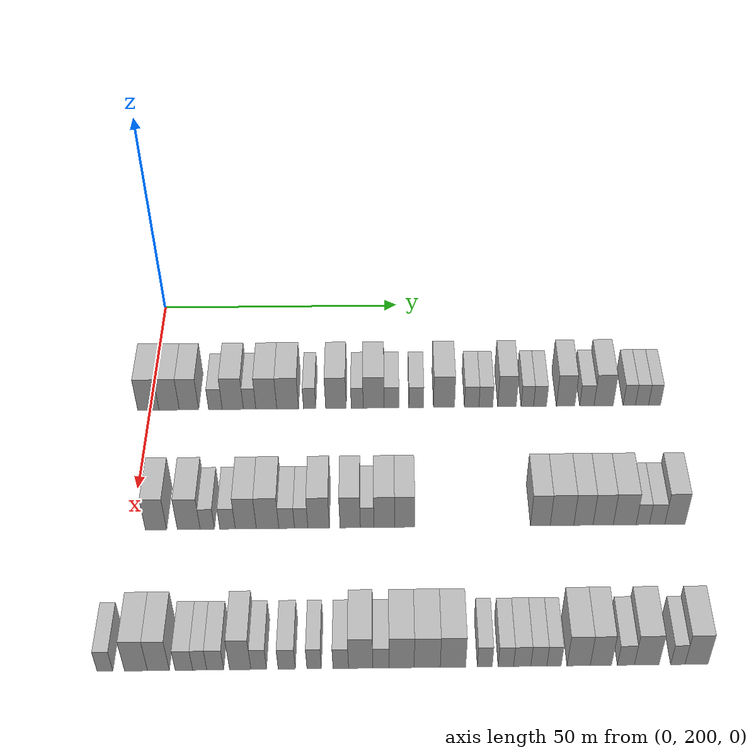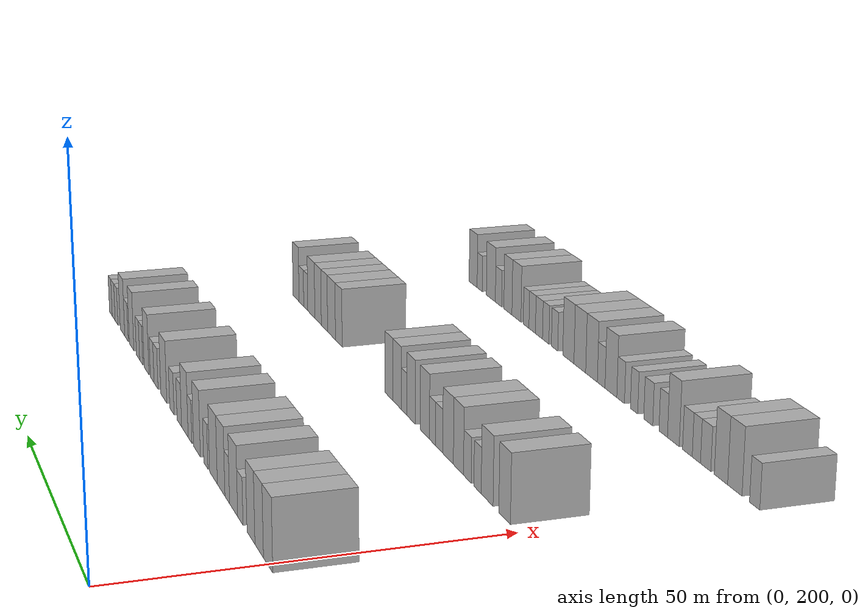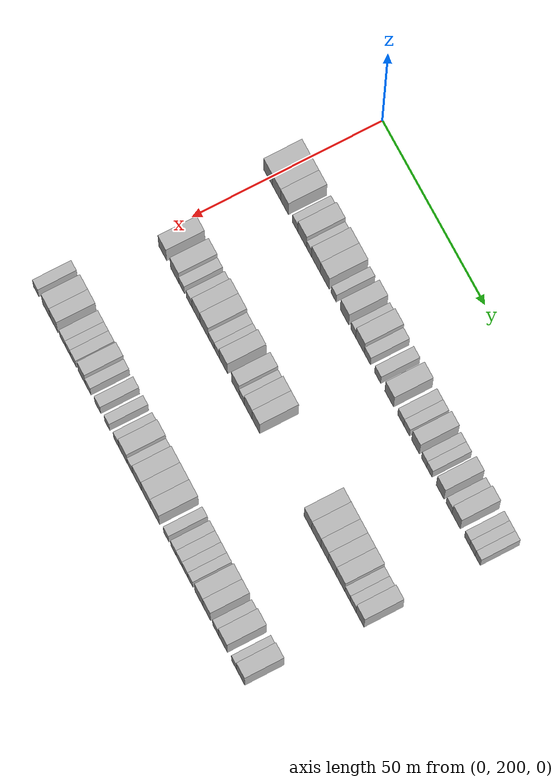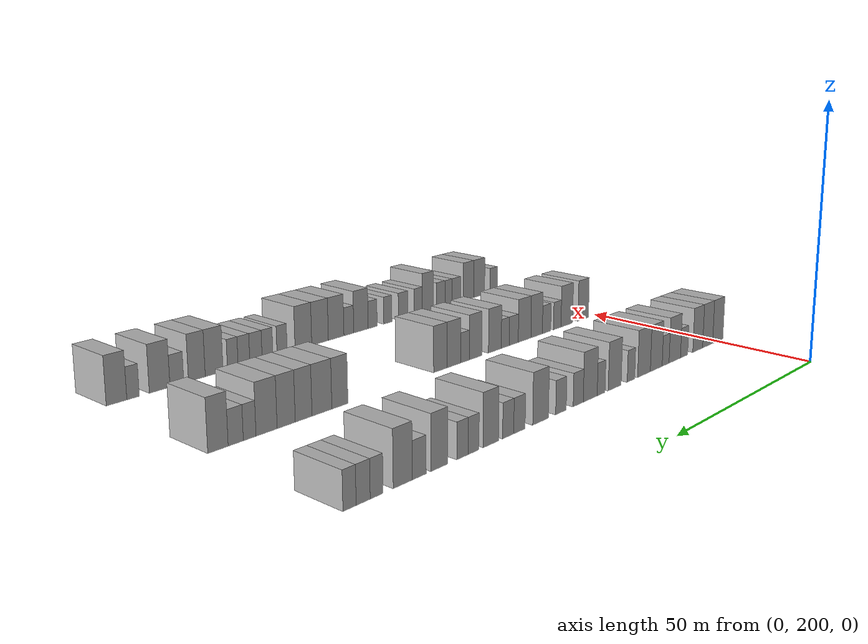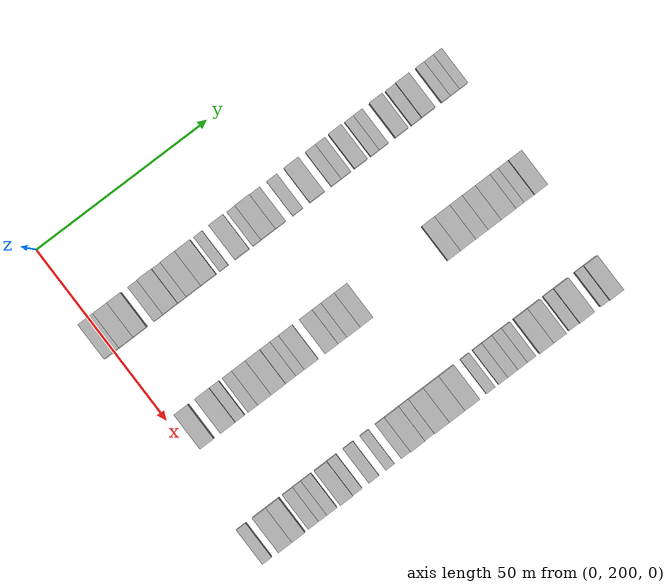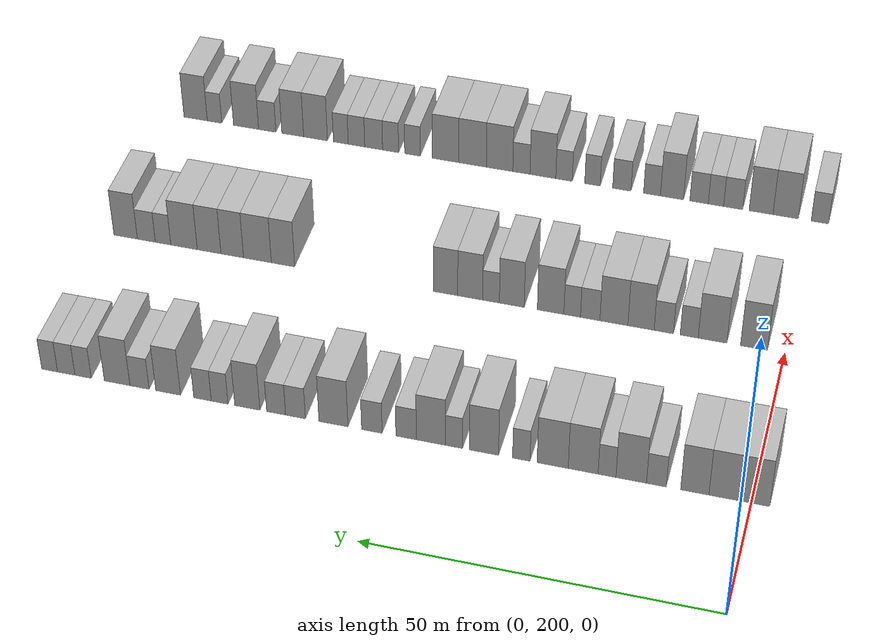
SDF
<sdf version="1.6">
 <world name="default">
  <model name="building_161">
   <static>1</static>
   <pose>25.0000 199.6917 0 0.000000 0.000000 0.000000</pose>
   <link name="link">
    <pose>0 0 4.50 0 0 0</pose>
    <collision name="collision"><geometry><box><size>10.0000 4.2980 9.0000</size></box></geometry></collision>
    <visual name="visual">
     <cast_shadows>0</cast_shadows>
     <geometry><box><size>10.0000 4.2980 9.0000</size></box></geometry>
     <material>
      <script>
       <uri>model://HANNAS_wall/materials/scripts</uri>
       <uri>model://HANNAS_wall/materials/textures</uri>
       <name>vrc/HANNAS_wall</name>
      </script>
     </material>
    </visual>
   </link>
  </model>
  <model name="building_162">
   <static>1</static>
   <pose>25.0000 203.8804 0 0.000000 0.000000 0.000000</pose>
   <link name="link">
    <pose>0 0 4.50 0 0 0</pose>
    <collision name="collision"><geometry><box><size>10.0000 4.0794 9.0000</size></box></geometry></collision>
    <visual name="visual">
     <cast_shadows>0</cast_shadows>
     <geometry><box><size>10.0000 4.0794 9.0000</size></box></geometry>
     <material>
      <script>
       <uri>model://HANNAS_wall/materials/scripts</uri>
       <uri>model://HANNAS_wall/materials/textures</uri>
       <name>vrc/HANNAS_wall</name>
      </script>
     </material>
    </visual>
   </link>
  </model>
  <model name="building_163">
   <static>1</static>
   <pose>25.0000 207.8768 0 0.000000 0.000000 0.000000</pose>
   <link name="link">
    <pose>0 0 4.50 0 0 0</pose>
    <collision name="collision"><geometry><box><size>10.0000 3.9134 9.0000</size></box></geometry></collision>
    <visual name="visual">
     <cast_shadows>0</cast_shadows>
     <geometry><box><size>10.0000 3.9134 9.0000</size></box></geometry>
     <material>
      <script>
       <uri>model://HANNAS_wall/materials/scripts</uri>
       <uri>model://HANNAS_wall/materials/textures</uri>
       <name>vrc/HANNAS_wall</name>
      </script>
     </material>
    </visual>
   </link>
  </model>
  <model name="building_164">
   <static>1</static>
   <pose>25.0000 213.2093 0 0.000000 0.000000 0.000000</pose>
   <link name="link">
    <pose>0 0 3.00 0 0 0</pose>
    <collision name="collision"><geometry><box><size>10.0000 2.7516 6.0000</size></box></geometry></collision>
    <visual name="visual">
     <cast_shadows>0</cast_shadows>
     <geometry><box><size>10.0000 2.7516 6.0000</size></box></geometry>
     <material>
      <script>
       <uri>model://HANNAS_wall/materials/scripts</uri>
       <uri>model://HANNAS_wall/materials/textures</uri>
       <name>vrc/HANNAS_wall</name>
      </script>
     </material>
    </visual>
   </link>
  </model>
  <model name="building_165">
   <static>1</static>
   <pose>25.0000 216.7175 0 0.000000 0.000000 0.000000</pose>
   <link name="link">
    <pose>0 0 4.50 0 0 0</pose>
    <collision name="collision"><geometry><box><size>10.0000 4.2647 9.0000</size></box></geometry></collision>
    <visual name="visual">
     <cast_shadows>0</cast_shadows>
     <geometry><box><size>10.0000 4.2647 9.0000</size></box></geometry>
     <material>
      <script>
       <uri>model://HANNAS_wall/materials/scripts</uri>
       <uri>model://HANNAS_wall/materials/textures</uri>
       <name>vrc/HANNAS_wall</name>
      </script>
     </material>
    </visual>
   </link>
  </model>
  <model name="building_166">
   <static>1</static>
   <pose>25.0000 220.1057 0 0.000000 0.000000 0.000000</pose>
   <link name="link">
    <pose>0 0 3.00 0 0 0</pose>
    <collision name="collision"><geometry><box><size>10.0000 2.5118 6.0000</size></box></geometry></collision>
    <visual name="visual">
     <cast_shadows>0</cast_shadows>
     <geometry><box><size>10.0000 2.5118 6.0000</size></box></geometry>
     <material>
      <script>
       <uri>model://HANNAS_wall/materials/scripts</uri>
       <uri>model://HANNAS_wall/materials/textures</uri>
       <name>vrc/HANNAS_wall</name>
      </script>
     </material>
    </visual>
   </link>
  </model>
  <model name="building_167">
   <static>1</static>
   <pose>25.0000 223.4678 0 0.000000 0.000000 0.000000</pose>
   <link name="link">
    <pose>0 0 4.50 0 0 0</pose>
    <collision name="collision"><geometry><box><size>10.0000 4.2124 9.0000</size></box></geometry></collision>
    <visual name="visual">
     <cast_shadows>0</cast_shadows>
     <geometry><box><size>10.0000 4.2124 9.0000</size></box></geometry>
     <material>
      <script>
       <uri>model://HANNAS_wall/materials/scripts</uri>
       <uri>model://HANNAS_wall/materials/textures</uri>
       <name>vrc/HANNAS_wall</name>
      </script>
     </material>
    </visual>
   </link>
  </model>
  <model name="building_168">
   <static>1</static>
   <pose>25.0000 227.7750 0 0.000000 0.000000 0.000000</pose>
   <link name="link">
    <pose>0 0 4.50 0 0 0</pose>
    <collision name="collision"><geometry><box><size>10.0000 4.4020 9.0000</size></box></geometry></collision>
    <visual name="visual">
     <cast_shadows>0</cast_shadows>
     <geometry><box><size>10.0000 4.4020 9.0000</size></box></geometry>
     <material>
      <script>
       <uri>model://HANNAS_wall/materials/scripts</uri>
       <uri>model://HANNAS_wall/materials/textures</uri>
       <name>vrc/HANNAS_wall</name>
      </script>
     </material>
    </visual>
   </link>
  </model>
  <model name="building_169">
   <static>1</static>
   <pose>25.0000 232.2181 0 0.000000 0.000000 0.000000</pose>
   <link name="link">
    <pose>0 0 3.00 0 0 0</pose>
    <collision name="collision"><geometry><box><size>10.0000 2.4842 6.0000</size></box></geometry></collision>
    <visual name="visual">
     <cast_shadows>0</cast_shadows>
     <geometry><box><size>10.0000 2.4842 6.0000</size></box></geometry>
     <material>
      <script>
       <uri>model://HANNAS_wall/materials/scripts</uri>
       <uri>model://HANNAS_wall/materials/textures</uri>
       <name>vrc/HANNAS_wall</name>
      </script>
     </material>
    </visual>
   </link>
  </model>
  <model name="building_170">
   <static>1</static>
   <pose>25.0000 237.5384 0 0.000000 0.000000 0.000000</pose>
   <link name="link">
    <pose>0 0 4.50 0 0 0</pose>
    <collision name="collision"><geometry><box><size>10.0000 4.1563 9.0000</size></box></geometry></collision>
    <visual name="visual">
     <cast_shadows>0</cast_shadows>
     <geometry><box><size>10.0000 4.1563 9.0000</size></box></geometry>
     <material>
      <script>
       <uri>model://HANNAS_wall/materials/scripts</uri>
       <uri>model://HANNAS_wall/materials/textures</uri>
       <name>vrc/HANNAS_wall</name>
      </script>
     </material>
    </visual>
   </link>
  </model>
  <model name="building_171">
   <static>1</static>
   <pose>25.0000 241.8305 0 0.000000 0.000000 0.000000</pose>
   <link name="link">
    <pose>0 0 3.00 0 0 0</pose>
    <collision name="collision"><geometry><box><size>10.0000 2.4280 6.0000</size></box></geometry></collision>
    <visual name="visual">
     <cast_shadows>0</cast_shadows>
     <geometry><box><size>10.0000 2.4280 6.0000</size></box></geometry>
     <material>
      <script>
       <uri>model://HANNAS_wall/materials/scripts</uri>
       <uri>model://HANNAS_wall/materials/textures</uri>
       <name>vrc/HANNAS_wall</name>
      </script>
     </material>
    </visual>
   </link>
  </model>
  <model name="building_172">
   <static>1</static>
   <pose>25.0000 245.1557 0 0.000000 0.000000 0.000000</pose>
   <link name="link">
    <pose>0 0 4.50 0 0 0</pose>
    <collision name="collision"><geometry><box><size>10.0000 4.2223 9.0000</size></box></geometry></collision>
    <visual name="visual">
     <cast_shadows>0</cast_shadows>
     <geometry><box><size>10.0000 4.2223 9.0000</size></box></geometry>
     <material>
      <script>
       <uri>model://HANNAS_wall/materials/scripts</uri>
       <uri>model://HANNAS_wall/materials/textures</uri>
       <name>vrc/HANNAS_wall</name>
      </script>
     </material>
    </visual>
   </link>
  </model>
  <model name="building_173">
   <static>1</static>
   <pose>25.0000 248.7570 0 0.000000 0.000000 0.000000</pose>
   <link name="link">
    <pose>0 0 3.00 0 0 0</pose>
    <collision name="collision"><geometry><box><size>10.0000 2.9803 6.0000</size></box></geometry></collision>
    <visual name="visual">
     <cast_shadows>0</cast_shadows>
     <geometry><box><size>10.0000 2.9803 6.0000</size></box></geometry>
     <material>
      <script>
       <uri>model://HANNAS_wall/materials/scripts</uri>
       <uri>model://HANNAS_wall/materials/textures</uri>
       <name>vrc/HANNAS_wall</name>
      </script>
     </material>
    </visual>
   </link>
  </model>
  <model name="building_174">
   <static>1</static>
   <pose>25.0000 253.7429 0 0.000000 0.000000 0.000000</pose>
   <link name="link">
    <pose>0 0 3.00 0 0 0</pose>
    <collision name="collision"><geometry><box><size>10.0000 2.9915 6.0000</size></box></geometry></collision>
    <visual name="visual">
     <cast_shadows>0</cast_shadows>
     <geometry><box><size>10.0000 2.9915 6.0000</size></box></geometry>
     <material>
      <script>
       <uri>model://HANNAS_wall/materials/scripts</uri>
       <uri>model://HANNAS_wall/materials/textures</uri>
       <name>vrc/HANNAS_wall</name>
      </script>
     </material>
    </visual>
   </link>
  </model>
  <model name="building_175">
   <static>1</static>
   <pose>25.0000 259.3654 0 0.000000 0.000000 0.000000</pose>
   <link name="link">
    <pose>0 0 4.50 0 0 0</pose>
    <collision name="collision"><geometry><box><size>10.0000 4.2535 9.0000</size></box></geometry></collision>
    <visual name="visual">
     <cast_shadows>0</cast_shadows>
     <geometry><box><size>10.0000 4.2535 9.0000</size></box></geometry>
     <material>
      <script>
       <uri>model://HANNAS_wall/materials/scripts</uri>
       <uri>model://HANNAS_wall/materials/textures</uri>
       <name>vrc/HANNAS_wall</name>
      </script>
     </material>
    </visual>
   </link>
  </model>
  <model name="building_176">
   <static>1</static>
   <pose>25.0000 264.9557 0 0.000000 0.000000 0.000000</pose>
   <link name="link">
    <pose>0 0 3.00 0 0 0</pose>
    <collision name="collision"><geometry><box><size>10.0000 2.9271 6.0000</size></box></geometry></collision>
    <visual name="visual">
     <cast_shadows>0</cast_shadows>
     <geometry><box><size>10.0000 2.9271 6.0000</size></box></geometry>
     <material>
      <script>
       <uri>model://HANNAS_wall/materials/scripts</uri>
       <uri>model://HANNAS_wall/materials/textures</uri>
       <name>vrc/HANNAS_wall</name>
      </script>
     </material>
    </visual>
   </link>
  </model>
  <model name="building_177">
   <static>1</static>
   <pose>25.0000 267.8238 0 0.000000 0.000000 0.000000</pose>
   <link name="link">
    <pose>0 0 3.00 0 0 0</pose>
    <collision name="collision"><geometry><box><size>10.0000 2.8092 6.0000</size></box></geometry></collision>
    <visual name="visual">
     <cast_shadows>0</cast_shadows>
     <geometry><box><size>10.0000 2.8092 6.0000</size></box></geometry>
     <material>
      <script>
       <uri>model://HANNAS_wall/materials/scripts</uri>
       <uri>model://HANNAS_wall/materials/textures</uri>
       <name>vrc/HANNAS_wall</name>
      </script>
     </material>
    </visual>
   </link>
  </model>
  <model name="building_178">
   <static>1</static>
   <pose>25.0000 272.0978 0 0.000000 0.000000 0.000000</pose>
   <link name="link">
    <pose>0 0 4.50 0 0 0</pose>
    <collision name="collision"><geometry><box><size>10.0000 3.7388 9.0000</size></box></geometry></collision>
    <visual name="visual">
     <cast_shadows>0</cast_shadows>
     <geometry><box><size>10.0000 3.7388 9.0000</size></box></geometry>
     <material>
      <script>
       <uri>model://HANNAS_wall/materials/scripts</uri>
       <uri>model://HANNAS_wall/materials/textures</uri>
       <name>vrc/HANNAS_wall</name>
      </script>
     </material>
    </visual>
   </link>
  </model>
  <model name="building_179">
   <static>1</static>
   <pose>25.0000 276.2237 0 0.000000 0.000000 0.000000</pose>
   <link name="link">
    <pose>0 0 3.00 0 0 0</pose>
    <collision name="collision"><geometry><box><size>10.0000 2.5129 6.0000</size></box></geometry></collision>
    <visual name="visual">
     <cast_shadows>0</cast_shadows>
     <geometry><box><size>10.0000 2.5129 6.0000</size></box></geometry>
     <material>
      <script>
       <uri>model://HANNAS_wall/materials/scripts</uri>
       <uri>model://HANNAS_wall/materials/textures</uri>
       <name>vrc/HANNAS_wall</name>
      </script>
     </material>
    </visual>
   </link>
  </model>
  <model name="building_180">
   <static>1</static>
   <pose>25.0000 278.7914 0 0.000000 0.000000 0.000000</pose>
   <link name="link">
    <pose>0 0 3.00 0 0 0</pose>
    <collision name="collision"><geometry><box><size>10.0000 2.6227 6.0000</size></box></geometry></collision>
    <visual name="visual">
     <cast_shadows>0</cast_shadows>
     <geometry><box><size>10.0000 2.6227 6.0000</size></box></geometry>
     <material>
      <script>
       <uri>model://HANNAS_wall/materials/scripts</uri>
       <uri>model://HANNAS_wall/materials/textures</uri>
       <name>vrc/HANNAS_wall</name>
      </script>
     </material>
    </visual>
   </link>
  </model>
  <model name="building_181">
   <static>1</static>
   <pose>25.0000 283.9685 0 0.000000 0.000000 0.000000</pose>
   <link name="link">
    <pose>0 0 4.50 0 0 0</pose>
    <collision name="collision"><geometry><box><size>10.0000 3.7314 9.0000</size></box></geometry></collision>
    <visual name="visual">
     <cast_shadows>0</cast_shadows>
     <geometry><box><size>10.0000 3.7314 9.0000</size></box></geometry>
     <material>
      <script>
       <uri>model://HANNAS_wall/materials/scripts</uri>
       <uri>model://HANNAS_wall/materials/textures</uri>
       <name>vrc/HANNAS_wall</name>
      </script>
     </material>
    </visual>
   </link>
  </model>
  <model name="building_182">
   <static>1</static>
   <pose>25.0000 288.2864 0 0.000000 0.000000 0.000000</pose>
   <link name="link">
    <pose>0 0 3.00 0 0 0</pose>
    <collision name="collision"><geometry><box><size>10.0000 2.9046 6.0000</size></box></geometry></collision>
    <visual name="visual">
     <cast_shadows>0</cast_shadows>
     <geometry><box><size>10.0000 2.9046 6.0000</size></box></geometry>
     <material>
      <script>
       <uri>model://HANNAS_wall/materials/scripts</uri>
       <uri>model://HANNAS_wall/materials/textures</uri>
       <name>vrc/HANNAS_wall</name>
      </script>
     </material>
    </visual>
   </link>
  </model>
  <model name="building_183">
   <static>1</static>
   <pose>25.0000 291.6866 0 0.000000 0.000000 0.000000</pose>
   <link name="link">
    <pose>0 0 4.50 0 0 0</pose>
    <collision name="collision"><geometry><box><size>10.0000 3.8958 9.0000</size></box></geometry></collision>
    <visual name="visual">
     <cast_shadows>0</cast_shadows>
     <geometry><box><size>10.0000 3.8958 9.0000</size></box></geometry>
     <material>
      <script>
       <uri>model://HANNAS_wall/materials/scripts</uri>
       <uri>model://HANNAS_wall/materials/textures</uri>
       <name>vrc/HANNAS_wall</name>
      </script>
     </material>
    </visual>
   </link>
  </model>
  <model name="building_184">
   <static>1</static>
   <pose>25.0000 296.8840 0 0.000000 0.000000 0.000000</pose>
   <link name="link">
    <pose>0 0 3.00 0 0 0</pose>
    <collision name="collision"><geometry><box><size>10.0000 2.4990 6.0000</size></box></geometry></collision>
    <visual name="visual">
     <cast_shadows>0</cast_shadows>
     <geometry><box><size>10.0000 2.4990 6.0000</size></box></geometry>
     <material>
      <script>
       <uri>model://HANNAS_wall/materials/scripts</uri>
       <uri>model://HANNAS_wall/materials/textures</uri>
       <name>vrc/HANNAS_wall</name>
      </script>
     </material>
    </visual>
   </link>
  </model>
  <model name="building_185">
   <static>1</static>
   <pose>25.0000 299.4609 0 0.000000 0.000000 0.000000</pose>
   <link name="link">
    <pose>0 0 3.00 0 0 0</pose>
    <collision name="collision"><geometry><box><size>10.0000 2.6548 6.0000</size></box></geometry></collision>
    <visual name="visual">
     <cast_shadows>0</cast_shadows>
     <geometry><box><size>10.0000 2.6548 6.0000</size></box></geometry>
     <material>
      <script>
       <uri>model://HANNAS_wall/materials/scripts</uri>
       <uri>model://HANNAS_wall/materials/textures</uri>
       <name>vrc/HANNAS_wall</name>
      </script>
     </material>
    </visual>
   </link>
  </model>
  <model name="building_186">
   <static>1</static>
   <pose>25.0000 302.0055 0 0.000000 0.000000 0.000000</pose>
   <link name="link">
    <pose>0 0 3.00 0 0 0</pose>
    <collision name="collision"><geometry><box><size>10.0000 2.4344 6.0000</size></box></geometry></collision>
    <visual name="visual">
     <cast_shadows>0</cast_shadows>
     <geometry><box><size>10.0000 2.4344 6.0000</size></box></geometry>
     <material>
      <script>
       <uri>model://HANNAS_wall/materials/scripts</uri>
       <uri>model://HANNAS_wall/materials/textures</uri>
       <name>vrc/HANNAS_wall</name>
      </script>
     </material>
    </visual>
   </link>
  </model>
  <model name="building_382">
   <static>1</static>
   <pose>55.0000 204.5457 0 0.000000 0.000000 0.000000</pose>
   <link name="link">
    <pose>0 0 4.50 0 0 0</pose>
    <collision name="collision"><geometry><box><size>10.0000 3.9657 9.0000</size></box></geometry></collision>
    <visual name="visual">
     <cast_shadows>0</cast_shadows>
     <geometry><box><size>10.0000 3.9657 9.0000</size></box></geometry>
     <material>
      <script>
       <uri>model://HANNAS_wall/materials/scripts</uri>
       <uri>model://HANNAS_wall/materials/textures</uri>
       <name>vrc/HANNAS_wall</name>
      </script>
     </material>
    </visual>
   </link>
  </model>
  <model name="building_383">
   <static>1</static>
   <pose>55.0000 210.6494 0 0.000000 0.000000 0.000000</pose>
   <link name="link">
    <pose>0 0 4.50 0 0 0</pose>
    <collision name="collision"><geometry><box><size>10.0000 4.2418 9.0000</size></box></geometry></collision>
    <visual name="visual">
     <cast_shadows>0</cast_shadows>
     <geometry><box><size>10.0000 4.2418 9.0000</size></box></geometry>
     <material>
      <script>
       <uri>model://HANNAS_wall/materials/scripts</uri>
       <uri>model://HANNAS_wall/materials/textures</uri>
       <name>vrc/HANNAS_wall</name>
      </script>
     </material>
    </visual>
   </link>
  </model>
  <model name="building_384">
   <static>1</static>
   <pose>55.0000 214.1078 0 0.000000 0.000000 0.000000</pose>
   <link name="link">
    <pose>0 0 3.00 0 0 0</pose>
    <collision name="collision"><geometry><box><size>10.0000 2.6749 6.0000</size></box></geometry></collision>
    <visual name="visual">
     <cast_shadows>0</cast_shadows>
     <geometry><box><size>10.0000 2.6749 6.0000</size></box></geometry>
     <material>
      <script>
       <uri>model://HANNAS_wall/materials/scripts</uri>
       <uri>model://HANNAS_wall/materials/textures</uri>
       <name>vrc/HANNAS_wall</name>
      </script>
     </material>
    </visual>
   </link>
  </model>
  <model name="building_385">
   <static>1</static>
   <pose>55.0000 217.8831 0 0.000000 0.000000 0.000000</pose>
   <link name="link">
    <pose>0 0 3.00 0 0 0</pose>
    <collision name="collision"><geometry><box><size>10.0000 2.8757 6.0000</size></box></geometry></collision>
    <visual name="visual">
     <cast_shadows>0</cast_shadows>
     <geometry><box><size>10.0000 2.8757 6.0000</size></box></geometry>
     <material>
      <script>
       <uri>model://HANNAS_wall/materials/scripts</uri>
       <uri>model://HANNAS_wall/materials/textures</uri>
       <name>vrc/HANNAS_wall</name>
      </script>
     </material>
    </visual>
   </link>
  </model>
  <model name="building_386">
   <static>1</static>
   <pose>55.0000 221.2799 0 0.000000 0.000000 0.000000</pose>
   <link name="link">
    <pose>0 0 4.50 0 0 0</pose>
    <collision name="collision"><geometry><box><size>10.0000 3.9180 9.0000</size></box></geometry></collision>
    <visual name="visual">
     <cast_shadows>0</cast_shadows>
     <geometry><box><size>10.0000 3.9180 9.0000</size></box></geometry>
     <material>
      <script>
       <uri>model://HANNAS_wall/materials/scripts</uri>
       <uri>model://HANNAS_wall/materials/textures</uri>
       <name>vrc/HANNAS_wall</name>
      </script>
     </material>
    </visual>
   </link>
  </model>
  <model name="building_387">
   <static>1</static>
   <pose>55.0000 225.3387 0 0.000000 0.000000 0.000000</pose>
   <link name="link">
    <pose>0 0 4.50 0 0 0</pose>
    <collision name="collision"><geometry><box><size>10.0000 4.1995 9.0000</size></box></geometry></collision>
    <visual name="visual">
     <cast_shadows>0</cast_shadows>
     <geometry><box><size>10.0000 4.1995 9.0000</size></box></geometry>
     <material>
      <script>
       <uri>model://HANNAS_wall/materials/scripts</uri>
       <uri>model://HANNAS_wall/materials/textures</uri>
       <name>vrc/HANNAS_wall</name>
      </script>
     </material>
    </visual>
   </link>
  </model>
  <model name="building_388">
   <static>1</static>
   <pose>55.0000 228.9033 0 0.000000 0.000000 0.000000</pose>
   <link name="link">
    <pose>0 0 3.00 0 0 0</pose>
    <collision name="collision"><geometry><box><size>10.0000 2.9298 6.0000</size></box></geometry></collision>
    <visual name="visual">
     <cast_shadows>0</cast_shadows>
     <geometry><box><size>10.0000 2.9298 6.0000</size></box></geometry>
     <material>
      <script>
       <uri>model://HANNAS_wall/materials/scripts</uri>
       <uri>model://HANNAS_wall/materials/textures</uri>
       <name>vrc/HANNAS_wall</name>
      </script>
     </material>
    </visual>
   </link>
  </model>
  <model name="building_389">
   <static>1</static>
   <pose>55.0000 231.6200 0 0.000000 0.000000 0.000000</pose>
   <link name="link">
    <pose>0 0 3.00 0 0 0</pose>
    <collision name="collision"><geometry><box><size>10.0000 2.5036 6.0000</size></box></geometry></collision>
    <visual name="visual">
     <cast_shadows>0</cast_shadows>
     <geometry><box><size>10.0000 2.5036 6.0000</size></box></geometry>
     <material>
      <script>
       <uri>model://HANNAS_wall/materials/scripts</uri>
       <uri>model://HANNAS_wall/materials/textures</uri>
       <name>vrc/HANNAS_wall</name>
      </script>
     </material>
    </visual>
   </link>
  </model>
  <model name="building_390">
   <static>1</static>
   <pose>55.0000 234.8811 0 0.000000 0.000000 0.000000</pose>
   <link name="link">
    <pose>0 0 4.50 0 0 0</pose>
    <collision name="collision"><geometry><box><size>10.0000 4.0185 9.0000</size></box></geometry></collision>
    <visual name="visual">
     <cast_shadows>0</cast_shadows>
     <geometry><box><size>10.0000 4.0185 9.0000</size></box></geometry>
     <material>
      <script>
       <uri>model://HANNAS_wall/materials/scripts</uri>
       <uri>model://HANNAS_wall/materials/textures</uri>
       <name>vrc/HANNAS_wall</name>
      </script>
     </material>
    </visual>
   </link>
  </model>
  <model name="building_391">
   <static>1</static>
   <pose>55.0000 240.7834 0 0.000000 0.000000 0.000000</pose>
   <link name="link">
    <pose>0 0 4.50 0 0 0</pose>
    <collision name="collision"><geometry><box><size>10.0000 3.7860 9.0000</size></box></geometry></collision>
    <visual name="visual">
     <cast_shadows>0</cast_shadows>
     <geometry><box><size>10.0000 3.7860 9.0000</size></box></geometry>
     <material>
      <script>
       <uri>model://HANNAS_wall/materials/scripts</uri>
       <uri>model://HANNAS_wall/materials/textures</uri>
       <name>vrc/HANNAS_wall</name>
      </script>
     </material>
    </visual>
   </link>
  </model>
  <model name="building_392">
   <static>1</static>
   <pose>55.0000 243.9484 0 0.000000 0.000000 0.000000</pose>
   <link name="link">
    <pose>0 0 3.00 0 0 0</pose>
    <collision name="collision"><geometry><box><size>10.0000 2.5441 6.0000</size></box></geometry></collision>
    <visual name="visual">
     <cast_shadows>0</cast_shadows>
     <geometry><box><size>10.0000 2.5441 6.0000</size></box></geometry>
     <material>
      <script>
       <uri>model://HANNAS_wall/materials/scripts</uri>
       <uri>model://HANNAS_wall/materials/textures</uri>
       <name>vrc/HANNAS_wall</name>
      </script>
     </material>
    </visual>
   </link>
  </model>
  <model name="building_393">
   <static>1</static>
   <pose>55.0000 247.1402 0 0.000000 0.000000 0.000000</pose>
   <link name="link">
    <pose>0 0 4.50 0 0 0</pose>
    <collision name="collision"><geometry><box><size>10.0000 3.8394 9.0000</size></box></geometry></collision>
    <visual name="visual">
     <cast_shadows>0</cast_shadows>
     <geometry><box><size>10.0000 3.8394 9.0000</size></box></geometry>
     <material>
      <script>
       <uri>model://HANNAS_wall/materials/scripts</uri>
       <uri>model://HANNAS_wall/materials/textures</uri>
       <name>vrc/HANNAS_wall</name>
      </script>
     </material>
    </visual>
   </link>
  </model>
  <model name="building_394">
   <static>1</static>
   <pose>55.0000 250.9300 0 0.000000 0.000000 0.000000</pose>
   <link name="link">
    <pose>0 0 4.50 0 0 0</pose>
    <collision name="collision"><geometry><box><size>10.0000 3.7403 9.0000</size></box></geometry></collision>
    <visual name="visual">
     <cast_shadows>0</cast_shadows>
     <geometry><box><size>10.0000 3.7403 9.0000</size></box></geometry>
     <material>
      <script>
       <uri>model://HANNAS_wall/materials/scripts</uri>
       <uri>model://HANNAS_wall/materials/textures</uri>
       <name>vrc/HANNAS_wall</name>
      </script>
     </material>
    </visual>
   </link>
  </model>
  <model name="building_395">
   <static>1</static>
   <pose>55.0000 276.3461 0 0.000000 0.000000 0.000000</pose>
   <link name="link">
    <pose>0 0 4.50 0 0 0</pose>
    <collision name="collision"><geometry><box><size>10.0000 3.6973 9.0000</size></box></geometry></collision>
    <visual name="visual">
     <cast_shadows>0</cast_shadows>
     <geometry><box><size>10.0000 3.6973 9.0000</size></box></geometry>
     <material>
      <script>
       <uri>model://HANNAS_wall/materials/scripts</uri>
       <uri>model://HANNAS_wall/materials/textures</uri>
       <name>vrc/HANNAS_wall</name>
      </script>
     </material>
    </visual>
   </link>
  </model>
  <model name="building_396">
   <static>1</static>
   <pose>55.0000 280.4042 0 0.000000 0.000000 0.000000</pose>
   <link name="link">
    <pose>0 0 4.50 0 0 0</pose>
    <collision name="collision"><geometry><box><size>10.0000 4.4188 9.0000</size></box></geometry></collision>
    <visual name="visual">
     <cast_shadows>0</cast_shadows>
     <geometry><box><size>10.0000 4.4188 9.0000</size></box></geometry>
     <material>
      <script>
       <uri>model://HANNAS_wall/materials/scripts</uri>
       <uri>model://HANNAS_wall/materials/textures</uri>
       <name>vrc/HANNAS_wall</name>
      </script>
     </material>
    </visual>
   </link>
  </model>
  <model name="building_397">
   <static>1</static>
   <pose>55.0000 284.4180 0 0.000000 0.000000 0.000000</pose>
   <link name="link">
    <pose>0 0 4.50 0 0 0</pose>
    <collision name="collision"><geometry><box><size>10.0000 3.6090 9.0000</size></box></geometry></collision>
    <visual name="visual">
     <cast_shadows>0</cast_shadows>
     <geometry><box><size>10.0000 3.6090 9.0000</size></box></geometry>
     <material>
      <script>
       <uri>model://HANNAS_wall/materials/scripts</uri>
       <uri>model://HANNAS_wall/materials/textures</uri>
       <name>vrc/HANNAS_wall</name>
      </script>
     </material>
    </visual>
   </link>
  </model>
  <model name="building_398">
   <static>1</static>
   <pose>55.0000 288.1175 0 0.000000 0.000000 0.000000</pose>
   <link name="link">
    <pose>0 0 4.50 0 0 0</pose>
    <collision name="collision"><geometry><box><size>10.0000 3.7899 9.0000</size></box></geometry></collision>
    <visual name="visual">
     <cast_shadows>0</cast_shadows>
     <geometry><box><size>10.0000 3.7899 9.0000</size></box></geometry>
     <material>
      <script>
       <uri>model://HANNAS_wall/materials/scripts</uri>
       <uri>model://HANNAS_wall/materials/textures</uri>
       <name>vrc/HANNAS_wall</name>
      </script>
     </material>
    </visual>
   </link>
  </model>
  <model name="building_399">
   <static>1</static>
   <pose>55.0000 292.1464 0 0.000000 0.000000 0.000000</pose>
   <link name="link">
    <pose>0 0 4.50 0 0 0</pose>
    <collision name="collision"><geometry><box><size>10.0000 4.2680 9.0000</size></box></geometry></collision>
    <visual name="visual">
     <cast_shadows>0</cast_shadows>
     <geometry><box><size>10.0000 4.2680 9.0000</size></box></geometry>
     <material>
      <script>
       <uri>model://HANNAS_wall/materials/scripts</uri>
       <uri>model://HANNAS_wall/materials/textures</uri>
       <name>vrc/HANNAS_wall</name>
      </script>
     </material>
    </visual>
   </link>
  </model>
  <model name="building_400">
   <static>1</static>
   <pose>55.0000 295.5260 0 0.000000 0.000000 0.000000</pose>
   <link name="link">
    <pose>0 0 3.00 0 0 0</pose>
    <collision name="collision"><geometry><box><size>10.0000 2.4911 6.0000</size></box></geometry></collision>
    <visual name="visual">
     <cast_shadows>0</cast_shadows>
     <geometry><box><size>10.0000 2.4911 6.0000</size></box></geometry>
     <material>
      <script>
       <uri>model://HANNAS_wall/materials/scripts</uri>
       <uri>model://HANNAS_wall/materials/textures</uri>
       <name>vrc/HANNAS_wall</name>
      </script>
     </material>
    </visual>
   </link>
  </model>
  <model name="building_401">
   <static>1</static>
   <pose>55.0000 298.2251 0 0.000000 0.000000 0.000000</pose>
   <link name="link">
    <pose>0 0 3.00 0 0 0</pose>
    <collision name="collision"><geometry><box><size>10.0000 2.9072 6.0000</size></box></geometry></collision>
    <visual name="visual">
     <cast_shadows>0</cast_shadows>
     <geometry><box><size>10.0000 2.9072 6.0000</size></box></geometry>
     <material>
      <script>
       <uri>model://HANNAS_wall/materials/scripts</uri>
       <uri>model://HANNAS_wall/materials/textures</uri>
       <name>vrc/HANNAS_wall</name>
      </script>
     </material>
    </visual>
   </link>
  </model>
  <model name="building_402">
   <static>1</static>
   <pose>55.0000 301.5829 0 0.000000 0.000000 0.000000</pose>
   <link name="link">
    <pose>0 0 4.50 0 0 0</pose>
    <collision name="collision"><geometry><box><size>10.0000 3.8084 9.0000</size></box></geometry></collision>
    <visual name="visual">
     <cast_shadows>0</cast_shadows>
     <geometry><box><size>10.0000 3.8084 9.0000</size></box></geometry>
     <material>
      <script>
       <uri>model://HANNAS_wall/materials/scripts</uri>
       <uri>model://HANNAS_wall/materials/textures</uri>
       <name>vrc/HANNAS_wall</name>
      </script>
     </material>
    </visual>
   </link>
  </model>
  <model name="building_598">
   <static>1</static>
   <pose>85.0000 199.1249 0 0.000000 0.000000 0.000000</pose>
   <link name="link">
    <pose>0 0 3.00 0 0 0</pose>
    <collision name="collision"><geometry><box><size>10.0000 2.6994 6.0000</size></box></geometry></collision>
    <visual name="visual">
     <cast_shadows>0</cast_shadows>
     <geometry><box><size>10.0000 2.6994 6.0000</size></box></geometry>
     <material>
      <script>
       <uri>model://HANNAS_wall/materials/scripts</uri>
       <uri>model://HANNAS_wall/materials/textures</uri>
       <name>vrc/HANNAS_wall</name>
      </script>
     </material>
    </visual>
   </link>
  </model>
  <model name="building_599">
   <static>1</static>
   <pose>85.0000 204.4413 0 0.000000 0.000000 0.000000</pose>
   <link name="link">
    <pose>0 0 4.50 0 0 0</pose>
    <collision name="collision"><geometry><box><size>10.0000 3.9333 9.0000</size></box></geometry></collision>
    <visual name="visual">
     <cast_shadows>0</cast_shadows>
     <geometry><box><size>10.0000 3.9333 9.0000</size></box></geometry>
     <material>
      <script>
       <uri>model://HANNAS_wall/materials/scripts</uri>
       <uri>model://HANNAS_wall/materials/textures</uri>
       <name>vrc/HANNAS_wall</name>
      </script>
     </material>
    </visual>
   </link>
  </model>
  <model name="building_600">
   <static>1</static>
   <pose>85.0000 208.2755 0 0.000000 0.000000 0.000000</pose>
   <link name="link">
    <pose>0 0 4.50 0 0 0</pose>
    <collision name="collision"><geometry><box><size>10.0000 3.7351 9.0000</size></box></geometry></collision>
    <visual name="visual">
     <cast_shadows>0</cast_shadows>
     <geometry><box><size>10.0000 3.7351 9.0000</size></box></geometry>
     <material>
      <script>
       <uri>model://HANNAS_wall/materials/scripts</uri>
       <uri>model://HANNAS_wall/materials/textures</uri>
       <name>vrc/HANNAS_wall</name>
      </script>
     </material>
    </visual>
   </link>
  </model>
  <model name="building_601">
   <static>1</static>
   <pose>85.0000 212.6414 0 0.000000 0.000000 0.000000</pose>
   <link name="link">
    <pose>0 0 3.00 0 0 0</pose>
    <collision name="collision"><geometry><box><size>10.0000 2.9967 6.0000</size></box></geometry></collision>
    <visual name="visual">
     <cast_shadows>0</cast_shadows>
     <geometry><box><size>10.0000 2.9967 6.0000</size></box></geometry>
     <material>
      <script>
       <uri>model://HANNAS_wall/materials/scripts</uri>
       <uri>model://HANNAS_wall/materials/textures</uri>
       <name>vrc/HANNAS_wall</name>
      </script>
     </material>
    </visual>
   </link>
  </model>
  <model name="building_602">
   <static>1</static>
   <pose>85.0000 215.3473 0 0.000000 0.000000 0.000000</pose>
   <link name="link">
    <pose>0 0 3.00 0 0 0</pose>
    <collision name="collision"><geometry><box><size>10.0000 2.4150 6.0000</size></box></geometry></collision>
    <visual name="visual">
     <cast_shadows>0</cast_shadows>
     <geometry><box><size>10.0000 2.4150 6.0000</size></box></geometry>
     <material>
      <script>
       <uri>model://HANNAS_wall/materials/scripts</uri>
       <uri>model://HANNAS_wall/materials/textures</uri>
       <name>vrc/HANNAS_wall</name>
      </script>
     </material>
    </visual>
   </link>
  </model>
  <model name="building_603">
   <static>1</static>
   <pose>85.0000 218.0091 0 0.000000 0.000000 0.000000</pose>
   <link name="link">
    <pose>0 0 3.00 0 0 0</pose>
    <collision name="collision"><geometry><box><size>10.0000 2.9086 6.0000</size></box></geometry></collision>
    <visual name="visual">
     <cast_shadows>0</cast_shadows>
     <geometry><box><size>10.0000 2.9086 6.0000</size></box></geometry>
     <material>
      <script>
       <uri>model://HANNAS_wall/materials/scripts</uri>
       <uri>model://HANNAS_wall/materials/textures</uri>
       <name>vrc/HANNAS_wall</name>
      </script>
     </material>
    </visual>
   </link>
  </model>
  <model name="building_604">
   <static>1</static>
   <pose>85.0000 222.2905 0 0.000000 0.000000 0.000000</pose>
   <link name="link">
    <pose>0 0 4.50 0 0 0</pose>
    <collision name="collision"><geometry><box><size>10.0000 3.6541 9.0000</size></box></geometry></collision>
    <visual name="visual">
     <cast_shadows>0</cast_shadows>
     <geometry><box><size>10.0000 3.6541 9.0000</size></box></geometry>
     <material>
      <script>
       <uri>model://HANNAS_wall/materials/scripts</uri>
       <uri>model://HANNAS_wall/materials/textures</uri>
       <name>vrc/HANNAS_wall</name>
      </script>
     </material>
    </visual>
   </link>
  </model>
  <model name="building_605">
   <static>1</static>
   <pose>85.0000 225.4560 0 0.000000 0.000000 0.000000</pose>
   <link name="link">
    <pose>0 0 3.00 0 0 0</pose>
    <collision name="collision"><geometry><box><size>10.0000 2.6769 6.0000</size></box></geometry></collision>
    <visual name="visual">
     <cast_shadows>0</cast_shadows>
     <geometry><box><size>10.0000 2.6769 6.0000</size></box></geometry>
     <material>
      <script>
       <uri>model://HANNAS_wall/materials/scripts</uri>
       <uri>model://HANNAS_wall/materials/textures</uri>
       <name>vrc/HANNAS_wall</name>
      </script>
     </material>
    </visual>
   </link>
  </model>
  <model name="building_606">
   <static>1</static>
   <pose>85.0000 230.2605 0 0.000000 0.000000 0.000000</pose>
   <link name="link">
    <pose>0 0 3.00 0 0 0</pose>
    <collision name="collision"><geometry><box><size>10.0000 2.9321 6.0000</size></box></geometry></collision>
    <visual name="visual">
     <cast_shadows>0</cast_shadows>
     <geometry><box><size>10.0000 2.9321 6.0000</size></box></geometry>
     <material>
      <script>
       <uri>model://HANNAS_wall/materials/scripts</uri>
       <uri>model://HANNAS_wall/materials/textures</uri>
       <name>vrc/HANNAS_wall</name>
      </script>
     </material>
    </visual>
   </link>
  </model>
  <model name="building_607">
   <static>1</static>
   <pose>85.0000 234.9660 0 0.000000 0.000000 0.000000</pose>
   <link name="link">
    <pose>0 0 3.00 0 0 0</pose>
    <collision name="collision"><geometry><box><size>10.0000 2.4791 6.0000</size></box></geometry></collision>
    <visual name="visual">
     <cast_shadows>0</cast_shadows>
     <geometry><box><size>10.0000 2.4791 6.0000</size></box></geometry>
     <material>
      <script>
       <uri>model://HANNAS_wall/materials/scripts</uri>
       <uri>model://HANNAS_wall/materials/textures</uri>
       <name>vrc/HANNAS_wall</name>
      </script>
     </material>
    </visual>
   </link>
  </model>
  <model name="building_608">
   <static>1</static>
   <pose>85.0000 239.5334 0 0.000000 0.000000 0.000000</pose>
   <link name="link">
    <pose>0 0 3.00 0 0 0</pose>
    <collision name="collision"><geometry><box><size>10.0000 2.6556 6.0000</size></box></geometry></collision>
    <visual name="visual">
     <cast_shadows>0</cast_shadows>
     <geometry><box><size>10.0000 2.6556 6.0000</size></box></geometry>
     <material>
      <script>
       <uri>model://HANNAS_wall/materials/scripts</uri>
       <uri>model://HANNAS_wall/materials/textures</uri>
       <name>vrc/HANNAS_wall</name>
      </script>
     </material>
    </visual>
   </link>
  </model>
  <model name="building_609">
   <static>1</static>
   <pose>85.0000 242.9522 0 0.000000 0.000000 0.000000</pose>
   <link name="link">
    <pose>0 0 4.50 0 0 0</pose>
    <collision name="collision"><geometry><box><size>10.0000 4.1821 9.0000</size></box></geometry></collision>
    <visual name="visual">
     <cast_shadows>0</cast_shadows>
     <geometry><box><size>10.0000 4.1821 9.0000</size></box></geometry>
     <material>
      <script>
       <uri>model://HANNAS_wall/materials/scripts</uri>
       <uri>model://HANNAS_wall/materials/textures</uri>
       <name>vrc/HANNAS_wall</name>
      </script>
     </material>
    </visual>
   </link>
  </model>
  <model name="building_610">
   <static>1</static>
   <pose>85.0000 246.4346 0 0.000000 0.000000 0.000000</pose>
   <link name="link">
    <pose>0 0 3.00 0 0 0</pose>
    <collision name="collision"><geometry><box><size>10.0000 2.7827 6.0000</size></box></geometry></collision>
    <visual name="visual">
     <cast_shadows>0</cast_shadows>
     <geometry><box><size>10.0000 2.7827 6.0000</size></box></geometry>
     <material>
      <script>
       <uri>model://HANNAS_wall/materials/scripts</uri>
       <uri>model://HANNAS_wall/materials/textures</uri>
       <name>vrc/HANNAS_wall</name>
      </script>
     </material>
    </visual>
   </link>
  </model>
  <model name="building_611">
   <static>1</static>
   <pose>85.0000 249.9851 0 0.000000 0.000000 0.000000</pose>
   <link name="link">
    <pose>0 0 4.50 0 0 0</pose>
    <collision name="collision"><geometry><box><size>10.0000 4.3183 9.0000</size></box></geometry></collision>
    <visual name="visual">
     <cast_shadows>0</cast_shadows>
     <geometry><box><size>10.0000 4.3183 9.0000</size></box></geometry>
     <material>
      <script>
       <uri>model://HANNAS_wall/materials/scripts</uri>
       <uri>model://HANNAS_wall/materials/textures</uri>
       <name>vrc/HANNAS_wall</name>
      </script>
     </material>
    </visual>
   </link>
  </model>
  <model name="building_612">
   <static>1</static>
   <pose>85.0000 254.3783 0 0.000000 0.000000 0.000000</pose>
   <link name="link">
    <pose>0 0 4.50 0 0 0</pose>
    <collision name="collision"><geometry><box><size>10.0000 4.4680 9.0000</size></box></geometry></collision>
    <visual name="visual">
     <cast_shadows>0</cast_shadows>
     <geometry><box><size>10.0000 4.4680 9.0000</size></box></geometry>
     <material>
      <script>
       <uri>model://HANNAS_wall/materials/scripts</uri>
       <uri>model://HANNAS_wall/materials/textures</uri>
       <name>vrc/HANNAS_wall</name>
      </script>
     </material>
    </visual>
   </link>
  </model>
  <model name="building_613">
   <static>1</static>
   <pose>85.0000 258.7954 0 0.000000 0.000000 0.000000</pose>
   <link name="link">
    <pose>0 0 4.50 0 0 0</pose>
    <collision name="collision"><geometry><box><size>10.0000 4.3662 9.0000</size></box></geometry></collision>
    <visual name="visual">
     <cast_shadows>0</cast_shadows>
     <geometry><box><size>10.0000 4.3662 9.0000</size></box></geometry>
     <material>
      <script>
       <uri>model://HANNAS_wall/materials/scripts</uri>
       <uri>model://HANNAS_wall/materials/textures</uri>
       <name>vrc/HANNAS_wall</name>
      </script>
     </material>
    </visual>
   </link>
  </model>
  <model name="building_614">
   <static>1</static>
   <pose>85.0000 264.2638 0 0.000000 0.000000 0.000000</pose>
   <link name="link">
    <pose>0 0 3.00 0 0 0</pose>
    <collision name="collision"><geometry><box><size>10.0000 2.5707 6.0000</size></box></geometry></collision>
    <visual name="visual">
     <cast_shadows>0</cast_shadows>
     <geometry><box><size>10.0000 2.5707 6.0000</size></box></geometry>
     <material>
      <script>
       <uri>model://HANNAS_wall/materials/scripts</uri>
       <uri>model://HANNAS_wall/materials/textures</uri>
       <name>vrc/HANNAS_wall</name>
      </script>
     </material>
    </visual>
   </link>
  </model>
  <model name="building_615">
   <static>1</static>
   <pose>85.0000 267.8797 0 0.000000 0.000000 0.000000</pose>
   <link name="link">
    <pose>0 0 3.00 0 0 0</pose>
    <collision name="collision"><geometry><box><size>10.0000 2.6610 6.0000</size></box></geometry></collision>
    <visual name="visual">
     <cast_shadows>0</cast_shadows>
     <geometry><box><size>10.0000 2.6610 6.0000</size></box></geometry>
     <material>
      <script>
       <uri>model://HANNAS_wall/materials/scripts</uri>
       <uri>model://HANNAS_wall/materials/textures</uri>
       <name>vrc/HANNAS_wall</name>
      </script>
     </material>
    </visual>
   </link>
  </model>
  <model name="building_616">
   <static>1</static>
   <pose>85.0000 270.6912 0 0.000000 0.000000 0.000000</pose>
   <link name="link">
    <pose>0 0 3.00 0 0 0</pose>
    <collision name="collision"><geometry><box><size>10.0000 2.9620 6.0000</size></box></geometry></collision>
    <visual name="visual">
     <cast_shadows>0</cast_shadows>
     <geometry><box><size>10.0000 2.9620 6.0000</size></box></geometry>
     <material>
      <script>
       <uri>model://HANNAS_wall/materials/scripts</uri>
       <uri>model://HANNAS_wall/materials/textures</uri>
       <name>vrc/HANNAS_wall</name>
      </script>
     </material>
    </visual>
   </link>
  </model>
  <model name="building_617">
   <static>1</static>
   <pose>85.0000 273.5528 0 0.000000 0.000000 0.000000</pose>
   <link name="link">
    <pose>0 0 3.00 0 0 0</pose>
    <collision name="collision"><geometry><box><size>10.0000 2.7613 6.0000</size></box></geometry></collision>
    <visual name="visual">
     <cast_shadows>0</cast_shadows>
     <geometry><box><size>10.0000 2.7613 6.0000</size></box></geometry>
     <material>
      <script>
       <uri>model://HANNAS_wall/materials/scripts</uri>
       <uri>model://HANNAS_wall/materials/textures</uri>
       <name>vrc/HANNAS_wall</name>
      </script>
     </material>
    </visual>
   </link>
  </model>
  <model name="building_618">
   <static>1</static>
   <pose>85.0000 276.1696 0 0.000000 0.000000 0.000000</pose>
   <link name="link">
    <pose>0 0 3.00 0 0 0</pose>
    <collision name="collision"><geometry><box><size>10.0000 2.4723 6.0000</size></box></geometry></collision>
    <visual name="visual">
     <cast_shadows>0</cast_shadows>
     <geometry><box><size>10.0000 2.4723 6.0000</size></box></geometry>
     <material>
      <script>
       <uri>model://HANNAS_wall/materials/scripts</uri>
       <uri>model://HANNAS_wall/materials/textures</uri>
       <name>vrc/HANNAS_wall</name>
      </script>
     </material>
    </visual>
   </link>
  </model>
  <model name="building_619">
   <static>1</static>
   <pose>85.0000 280.4066 0 0.000000 0.000000 0.000000</pose>
   <link name="link">
    <pose>0 0 4.50 0 0 0</pose>
    <collision name="collision"><geometry><box><size>10.0000 4.0017 9.0000</size></box></geometry></collision>
    <visual name="visual">
     <cast_shadows>0</cast_shadows>
     <geometry><box><size>10.0000 4.0017 9.0000</size></box></geometry>
     <material>
      <script>
       <uri>model://HANNAS_wall/materials/scripts</uri>
       <uri>model://HANNAS_wall/materials/textures</uri>
       <name>vrc/HANNAS_wall</name>
      </script>
     </material>
    </visual>
   </link>
  </model>
  <model name="building_620">
   <static>1</static>
   <pose>85.0000 284.2439 0 0.000000 0.000000 0.000000</pose>
   <link name="link">
    <pose>0 0 4.50 0 0 0</pose>
    <collision name="collision"><geometry><box><size>10.0000 3.6728 9.0000</size></box></geometry></collision>
    <visual name="visual">
     <cast_shadows>0</cast_shadows>
     <geometry><box><size>10.0000 3.6728 9.0000</size></box></geometry>
     <material>
      <script>
       <uri>model://HANNAS_wall/materials/scripts</uri>
       <uri>model://HANNAS_wall/materials/textures</uri>
       <name>vrc/HANNAS_wall</name>
      </script>
     </material>
    </visual>
   </link>
  </model>
  <model name="building_621">
   <static>1</static>
   <pose>85.0000 288.5431 0 0.000000 0.000000 0.000000</pose>
   <link name="link">
    <pose>0 0 3.00 0 0 0</pose>
    <collision name="collision"><geometry><box><size>10.0000 2.9256 6.0000</size></box></geometry></collision>
    <visual name="visual">
     <cast_shadows>0</cast_shadows>
     <geometry><box><size>10.0000 2.9256 6.0000</size></box></geometry>
     <material>
      <script>
       <uri>model://HANNAS_wall/materials/scripts</uri>
       <uri>model://HANNAS_wall/materials/textures</uri>
       <name>vrc/HANNAS_wall</name>
      </script>
     </material>
    </visual>
   </link>
  </model>
  <model name="building_622">
   <static>1</static>
   <pose>85.0000 292.1330 0 0.000000 0.000000 0.000000</pose>
   <link name="link">
    <pose>0 0 4.50 0 0 0</pose>
    <collision name="collision"><geometry><box><size>10.0000 4.2542 9.0000</size></box></geometry></collision>
    <visual name="visual">
     <cast_shadows>0</cast_shadows>
     <geometry><box><size>10.0000 4.2542 9.0000</size></box></geometry>
     <material>
      <script>
       <uri>model://HANNAS_wall/materials/scripts</uri>
       <uri>model://HANNAS_wall/materials/textures</uri>
       <name>vrc/HANNAS_wall</name>
      </script>
     </material>
    </visual>
   </link>
  </model>
  <model name="building_623">
   <static>1</static>
   <pose>85.0000 297.4991 0 0.000000 0.000000 0.000000</pose>
   <link name="link">
    <pose>0 0 3.00 0 0 0</pose>
    <collision name="collision"><geometry><box><size>10.0000 2.4781 6.0000</size></box></geometry></collision>
    <visual name="visual">
     <cast_shadows>0</cast_shadows>
     <geometry><box><size>10.0000 2.4781 6.0000</size></box></geometry>
     <material>
      <script>
       <uri>model://HANNAS_wall/materials/scripts</uri>
       <uri>model://HANNAS_wall/materials/textures</uri>
       <name>vrc/HANNAS_wall</name>
      </script>
     </material>
    </visual>
   </link>
  </model>
  <model name="building_624">
   <static>1</static>
   <pose>85.0000 300.7241 0 0.000000 0.000000 0.000000</pose>
   <link name="link">
    <pose>0 0 4.50 0 0 0</pose>
    <collision name="collision"><geometry><box><size>10.0000 3.9718 9.0000</size></box></geometry></collision>
    <visual name="visual">
     <cast_shadows>0</cast_shadows>
     <geometry><box><size>10.0000 3.9718 9.0000</size></box></geometry>
     <material>
      <script>
       <uri>model://HANNAS_wall/materials/scripts</uri>
       <uri>model://HANNAS_wall/materials/textures</uri>
       <name>vrc/HANNAS_wall</name>
      </script>
     </material>
    </visual>
   </link>
  </model>
 </world>
</sdf>
